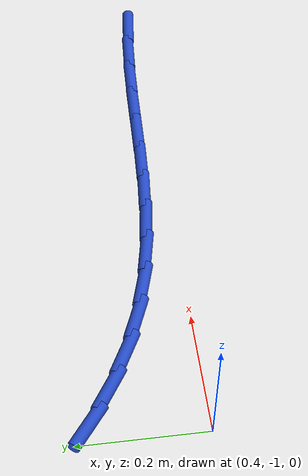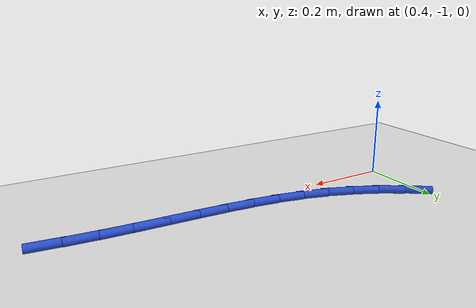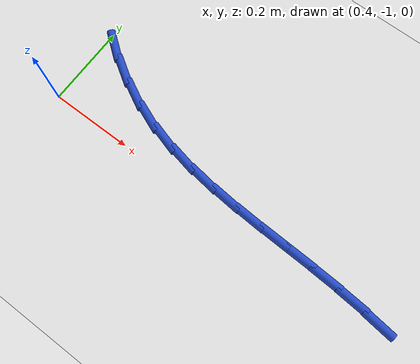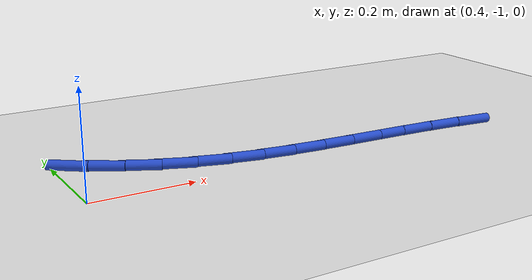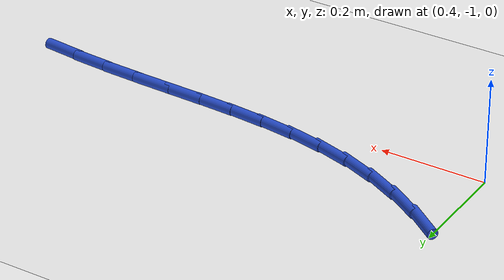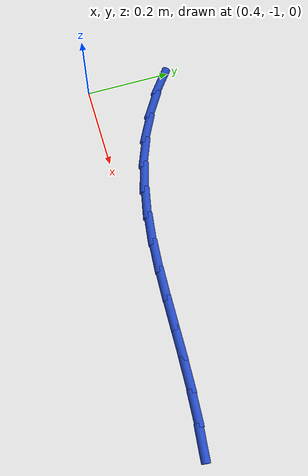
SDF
<sdf version="1.6">
 <world name="default">
  <model name="ground_plane">
   <static>1</static>
   <link name="link">
    <collision name="collision">
     <geometry><plane><normal>0 0 1</normal><size>100 100</size></plane></geometry>
     <surface><friction><ode><mu>100</mu><mu2>50</mu2></ode></friction></surface>
    </collision>
    <visual name="visual">
     <cast_shadows>0</cast_shadows>
     <geometry><plane><normal>0 0 1</normal><size>100 100</size></plane></geometry>
     <material>
      <script><uri>file://media/materials/scripts/gazebo.material</uri><name>Gazebo/WhiteGlow</name></script>
     </material>
    </visual>
   </link>
  </model>
  <model name="line">
   <link name="link_83">
    <pose>1.2699705947673479 -0.9872269545407201 0.01 0 1.57 -0.11234317632867864</pose>
    <collision name="collision">
     <geometry><cylinder><radius>0.01</radius><length>0.08</length></cylinder></geometry>
    </collision>
    <visual name="visual">
     <material>
      <script><name>Gazebo/Blue</name><uri>file://media/materials/scripts/gazebo.material</uri></script>
     </material>
     <geometry><cylinder><radius>0.01</radius><length>0.08</length></cylinder></geometry>
    </visual>
   </link>
   <link name="link_84">
    <pose>1.1993224781257255 -0.9792565610514 0.01 0 1.57 -0.07252699241981553</pose>
    <collision name="collision">
     <geometry><cylinder><radius>0.01</radius><length>0.08</length></cylinder></geometry>
    </collision>
    <visual name="visual">
     <material>
      <script><name>Gazebo/Blue</name><uri>file://media/materials/scripts/gazebo.material</uri></script>
     </material>
     <geometry><cylinder><radius>0.01</radius><length>0.08</length></cylinder></geometry>
    </visual>
   </link>
   <link name="link_85">
    <pose>1.1292343570756112 -0.9741643486694883 0.01 0 1.57 -0.0464330907551698</pose>
    <collision name="collision">
     <geometry><cylinder><radius>0.01</radius><length>0.08</length></cylinder></geometry>
    </collision>
    <visual name="visual">
     <material>
      <script><name>Gazebo/Blue</name><uri>file://media/materials/scripts/gazebo.material</uri></script>
     </material>
     <geometry><cylinder><radius>0.01</radius><length>0.08</length></cylinder></geometry>
    </visual>
   </link>
   <link name="link_86">
    <pose>1.0598083118602741 -0.9709383640359767 0.01 0 1.57 -0.03452814490013593</pose>
    <collision name="collision">
     <geometry><cylinder><radius>0.01</radius><length>0.08</length></cylinder></geometry>
    </collision>
    <visual name="visual">
     <material>
      <script><name>Gazebo/Blue</name><uri>file://media/materials/scripts/gazebo.material</uri></script>
     </material>
     <geometry><cylinder><radius>0.01</radius><length>0.08</length></cylinder></geometry>
    </visual>
   </link>
   <link name="link_87">
    <pose>0.9911464227229806 -0.968566653791857 0.01 0 1.57 -0.03729172126359653</pose>
    <collision name="collision">
     <geometry><cylinder><radius>0.01</radius><length>0.08</length></cylinder></geometry>
    </collision>
    <visual name="visual">
     <material>
      <script><name>Gazebo/Blue</name><uri>file://media/materials/scripts/gazebo.material</uri></script>
     </material>
     <geometry><cylinder><radius>0.01</radius><length>0.08</length></cylinder></geometry>
    </visual>
   </link>
   <link name="link_88">
    <pose>0.9233507699069993 -0.9660372645781204 0.01 0 1.57 -0.05529549654558474</pose>
    <collision name="collision">
     <geometry><cylinder><radius>0.01</radius><length>0.08</length></cylinder></geometry>
    </collision>
    <visual name="visual">
     <material>
      <script><name>Gazebo/Blue</name><uri>file://media/materials/scripts/gazebo.material</uri></script>
     </material>
     <geometry><cylinder><radius>0.01</radius><length>0.08</length></cylinder></geometry>
    </visual>
   </link>
   <link name="link_89">
    <pose>0.8565234336555966 -0.9623382430357593 0.01 0 1.57 -0.0891921842967057</pose>
    <collision name="collision">
     <geometry><cylinder><radius>0.01</radius><length>0.08</length></cylinder></geometry>
    </collision>
    <visual name="visual">
     <material>
      <script><name>Gazebo/Blue</name><uri>file://media/materials/scripts/gazebo.material</uri></script>
     </material>
     <geometry><cylinder><radius>0.01</radius><length>0.08</length></cylinder></geometry>
    </visual>
   </link>
   <link name="link_90">
    <pose>0.7907664942120409 -0.9564576358057645 0.01 0 1.57 -0.13958674121205164</pose>
    <collision name="collision">
     <geometry><cylinder><radius>0.01</radius><length>0.08</length></cylinder></geometry>
    </collision>
    <visual name="visual">
     <material>
      <script><name>Gazebo/Blue</name><uri>file://media/materials/scripts/gazebo.material</uri></script>
     </material>
     <geometry><cylinder><radius>0.01</radius><length>0.08</length></cylinder></geometry>
    </visual>
   </link>
   <link name="link_91">
    <pose>0.7261820318195992 -0.9473834895291283 0.01 0 1.57 -0.2067585828997742</pose>
    <collision name="collision">
     <geometry><cylinder><radius>0.01</radius><length>0.08</length></cylinder></geometry>
    </collision>
    <visual name="visual">
     <material>
      <script><name>Gazebo/Blue</name><uri>file://media/materials/scripts/gazebo.material</uri></script>
     </material>
     <geometry><cylinder><radius>0.01</radius><length>0.08</length></cylinder></geometry>
    </visual>
   </link>
   <link name="link_92">
    <pose>0.6628721267215398 -0.9341038508468424 0.01 0 1.57 -0.2902283884310891</pose>
    <collision name="collision">
     <geometry><cylinder><radius>0.01</radius><length>0.08</length></cylinder></geometry>
    </collision>
    <visual name="visual">
     <material>
      <script><name>Gazebo/Blue</name><uri>file://media/materials/scripts/gazebo.material</uri></script>
     </material>
     <geometry><cylinder><radius>0.01</radius><length>0.08</length></cylinder></geometry>
    </visual>
   </link>
   <link name="link_93">
    <pose>0.6009388591611293 -0.915606766399898 0.01 0 1.57 -0.38689414567393204</pose>
    <collision name="collision">
     <geometry><cylinder><radius>0.01</radius><length>0.08</length></cylinder></geometry>
    </collision>
    <visual name="visual">
     <material>
      <script><name>Gazebo/Blue</name><uri>file://media/materials/scripts/gazebo.material</uri></script>
     </material>
     <geometry><cylinder><radius>0.01</radius><length>0.08</length></cylinder></geometry>
    </visual>
   </link>
   <link name="link_94">
    <pose>0.540497862909276 -0.8909813581328855 0.01 0 1.57 -0.4822214404275227</pose>
    <collision name="collision">
     <geometry><cylinder><radius>0.01</radius><length>0.08</length></cylinder></geometry>
    </collision>
    <visual name="visual">
     <material>
      <script><name>Gazebo/Blue</name><uri>file://media/materials/scripts/gazebo.material</uri></script>
     </material>
     <geometry><cylinder><radius>0.01</radius><length>0.08</length></cylinder></geometry>
    </visual>
   </link>
   <link name="link_95">
    <pose>0.481790117662447 -0.8602515140393384 0.01 0 1.57 -0.5697970998553068</pose>
    <collision name="collision">
     <geometry><cylinder><radius>0.01</radius><length>0.08</length></cylinder></geometry>
    </collision>
    <visual name="visual">
     <material>
      <script><name>Gazebo/Blue</name><uri>file://media/materials/scripts/gazebo.material</uri></script>
     </material>
     <geometry><cylinder><radius>0.01</radius><length>0.08</length></cylinder></geometry>
    </visual>
   </link>
   <link name="link_96">
    <pose>0.42512441075892077 -0.8239467969573291 0.01 0 1.57 -0.6506432769907591</pose>
    <collision name="collision">
     <geometry><cylinder><radius>0.01</radius><length>0.08</length></cylinder></geometry>
    </collision>
    <visual name="visual">
     <material>
      <script><name>Gazebo/Blue</name><uri>file://media/materials/scripts/gazebo.material</uri></script>
     </material>
     <geometry><cylinder><radius>0.01</radius><length>0.08</length></cylinder></geometry>
    </visual>
   </link>
  </model>
 </world>
</sdf>
